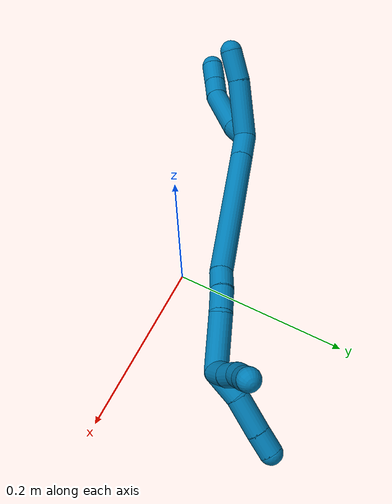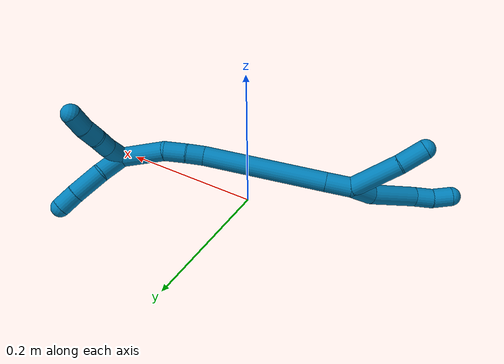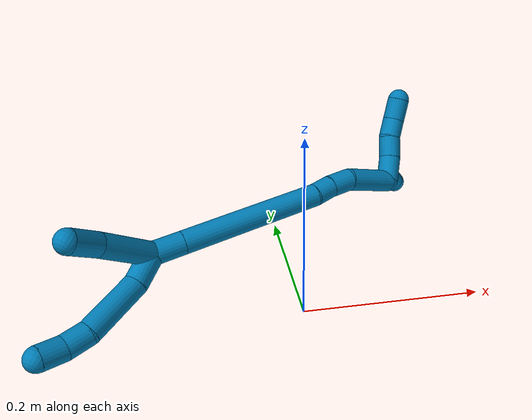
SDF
<sdf version="1.7">
 <world name="default">
  <model name="9">
   <static>0</static>
   <link name="9">
    <collision name="collision-cylinder-e_1_2_8">
     <pose>5e-06 0.000266 -0.017074 -3.12604 0.000302 -0.038848</pose>
     <geometry><cylinder><radius>0.0125</radius><length>0.034152</length></cylinder></geometry>
     <surface>
      <friction><ode><mu>1.16</mu><mu2>1.16</mu2><slip1>0</slip1><slip2>0</slip2></ode></friction>
      <contact><ode><kp>1e+06</kp><kd>1</kd><max_vel>0</max_vel><min_depth>0.001</min_depth></ode></contact>
     </surface>
    </collision>
    <visual name="visual-cylinder-e_1_2_8">
     <pose>5e-06 0.000266 -0.017074 -3.12604 0.000302 -0.038848</pose>
     <geometry><cylinder><radius>0.0125</radius><length>0.034152</length></cylinder></geometry>
     <material><ambient>0 0.490196 0.709804 1</ambient></material>
    </visual>
    <collision name="collision-cylinder-e_2_8_9">
     <pose>-0.008084 -0.005347 -0.065274 2.95494 -0.250162 -1.8618</pose>
     <geometry><cylinder><radius>0.0125</radius><length>0.065389</length></cylinder></geometry>
     <surface>
      <friction><ode><mu>1.16</mu><mu2>1.16</mu2><slip1>0</slip1><slip2>0</slip2></ode></friction>
      <contact><ode><kp>1e+06</kp><kd>1</kd><max_vel>0</max_vel><min_depth>0.001</min_depth></ode></contact>
     </surface>
    </collision>
    <visual name="visual-cylinder-e_2_8_9">
     <pose>-0.008084 -0.005347 -0.065274 2.95494 -0.250162 -1.8618</pose>
     <geometry><cylinder><radius>0.0125</radius><length>0.065389</length></cylinder></geometry>
     <material><ambient>0 0.490196 0.709804 1</ambient></material>
    </visual>
    <collision name="collision-cylinder-e_3_9_10">
     <pose>-0.022383 -0.012585 -0.107308 3.01753 -0.513923 -2.67739</pose>
     <geometry><cylinder><radius>0.0125</radius><length>0.025245</length></cylinder></geometry>
     <surface>
      <friction><ode><mu>1.16</mu><mu2>1.16</mu2><slip1>0</slip1><slip2>0</slip2></ode></friction>
      <contact><ode><kp>1e+06</kp><kd>1</kd><max_vel>0</max_vel><min_depth>0.001</min_depth></ode></contact>
     </surface>
    </collision>
    <visual name="visual-cylinder-e_3_9_10">
     <pose>-0.022383 -0.012585 -0.107308 3.01753 -0.513923 -2.67739</pose>
     <geometry><cylinder><radius>0.0125</radius><length>0.025245</length></cylinder></geometry>
     <material><ambient>0 0.490196 0.709804 1</ambient></material>
    </visual>
    <collision name="collision-cylinder-e_4_10_6">
     <pose>-0.036153 -0.0177 -0.127576 2.76013 -0.643611 -2.09172</pose>
     <geometry><cylinder><radius>0.0125</radius><length>0.025214</length></cylinder></geometry>
     <surface>
      <friction><ode><mu>1.16</mu><mu2>1.16</mu2><slip1>0</slip1><slip2>0</slip2></ode></friction>
      <contact><ode><kp>1e+06</kp><kd>1</kd><max_vel>0</max_vel><min_depth>0.001</min_depth></ode></contact>
     </surface>
    </collision>
    <visual name="visual-cylinder-e_4_10_6">
     <pose>-0.036153 -0.0177 -0.127576 2.76013 -0.643611 -2.09172</pose>
     <geometry><cylinder><radius>0.0125</radius><length>0.025214</length></cylinder></geometry>
     <material><ambient>0 0.490196 0.709804 1</ambient></material>
    </visual>
    <collision name="collision-cylinder-e_1_2_11">
     <pose>-0.023823 -0.017754 -0.012986 2.20233 -0.825252 -1.42349</pose>
     <geometry><cylinder><radius>0.0125</radius><length>0.064851</length></cylinder></geometry>
     <surface>
      <friction><ode><mu>1.16</mu><mu2>1.16</mu2><slip1>0</slip1><slip2>0</slip2></ode></friction>
      <contact><ode><kp>1e+06</kp><kd>1</kd><max_vel>0</max_vel><min_depth>0.001</min_depth></ode></contact>
     </surface>
    </collision>
    <visual name="visual-cylinder-e_1_2_11">
     <pose>-0.023823 -0.017754 -0.012986 2.20233 -0.825252 -1.42349</pose>
     <geometry><cylinder><radius>0.0125</radius><length>0.064851</length></cylinder></geometry>
     <material><ambient>0 0.490196 0.709804 1</ambient></material>
    </visual>
    <collision name="collision-cylinder-e_2_11_5">
     <pose>-0.058705 -0.046756 -0.033722 2.17407 -0.680558 -1.18595</pose>
     <geometry><cylinder><radius>0.0125</radius><length>0.035149</length></cylinder></geometry>
     <surface>
      <friction><ode><mu>1.16</mu><mu2>1.16</mu2><slip1>0</slip1><slip2>0</slip2></ode></friction>
      <contact><ode><kp>1e+06</kp><kd>1</kd><max_vel>0</max_vel><min_depth>0.001</min_depth></ode></contact>
     </surface>
    </collision>
    <visual name="visual-cylinder-e_2_11_5">
     <pose>-0.058705 -0.046756 -0.033722 2.17407 -0.680558 -1.18595</pose>
     <geometry><cylinder><radius>0.0125</radius><length>0.035149</length></cylinder></geometry>
     <material><ambient>0 0.490196 0.709804 1</ambient></material>
    </visual>
    <collision name="collision-cylinder-e_1_2_12">
     <pose>0.01085 -0.000377 0.01233 0.03054 0.721409 0.011521</pose>
     <geometry><cylinder><radius>0.0125</radius><length>0.032857</length></cylinder></geometry>
     <surface>
      <friction><ode><mu>1.16</mu><mu2>1.16</mu2><slip1>0</slip1><slip2>0</slip2></ode></friction>
      <contact><ode><kp>1e+06</kp><kd>1</kd><max_vel>0</max_vel><min_depth>0.001</min_depth></ode></contact>
     </surface>
    </collision>
    <visual name="visual-cylinder-e_1_2_12">
     <pose>0.01085 -0.000377 0.01233 0.03054 0.721409 0.011521</pose>
     <geometry><cylinder><radius>0.0125</radius><length>0.032857</length></cylinder></geometry>
     <material><ambient>0 0.490196 0.709804 1</ambient></material>
    </visual>
    <collision name="collision-cylinder-e_2_12_13">
     <pose>0.073379 -0.003028 0.08349 0.038647 0.720407 0.014557</pose>
     <geometry><cylinder><radius>0.0125</radius><length>0.156677</length></cylinder></geometry>
     <surface>
      <friction><ode><mu>1.16</mu><mu2>1.16</mu2><slip1>0</slip1><slip2>0</slip2></ode></friction>
      <contact><ode><kp>1e+06</kp><kd>1</kd><max_vel>0</max_vel><min_depth>0.001</min_depth></ode></contact>
     </surface>
    </collision>
    <visual name="visual-cylinder-e_2_12_13">
     <pose>0.073379 -0.003028 0.08349 0.038647 0.720407 0.014557</pose>
     <geometry><cylinder><radius>0.0125</radius><length>0.156677</length></cylinder></geometry>
     <material><ambient>0 0.490196 0.709804 1</ambient></material>
    </visual>
    <collision name="collision-cylinder-e_3_13_14">
     <pose>0.131081 -0.004485 0.151863 -0.085526 0.561342 -0.024669</pose>
     <geometry><cylinder><radius>0.0125</radius><length>0.022628</length></cylinder></geometry>
     <surface>
      <friction><ode><mu>1.16</mu><mu2>1.16</mu2><slip1>0</slip1><slip2>0</slip2></ode></friction>
      <contact><ode><kp>1e+06</kp><kd>1</kd><max_vel>0</max_vel><min_depth>0.001</min_depth></ode></contact>
     </surface>
    </collision>
    <visual name="visual-cylinder-e_3_13_14">
     <pose>0.131081 -0.004485 0.151863 -0.085526 0.561342 -0.024669</pose>
     <geometry><cylinder><radius>0.0125</radius><length>0.022628</length></cylinder></geometry>
     <material><ambient>0 0.490196 0.709804 1</ambient></material>
    </visual>
    <collision name="collision-cylinder-e_4_14_15">
     <pose>0.14586 -0.002575 0.172064 -0.102025 0.685179 -0.036415</pose>
     <geometry><cylinder><radius>0.0125</radius><length>0.027673</length></cylinder></geometry>
     <surface>
      <friction><ode><mu>1.16</mu><mu2>1.16</mu2><slip1>0</slip1><slip2>0</slip2></ode></friction>
      <contact><ode><kp>1e+06</kp><kd>1</kd><max_vel>0</max_vel><min_depth>0.001</min_depth></ode></contact>
     </surface>
    </collision>
    <visual name="visual-cylinder-e_4_14_15">
     <pose>0.14586 -0.002575 0.172064 -0.102025 0.685179 -0.036415</pose>
     <geometry><cylinder><radius>0.0125</radius><length>0.027673</length></cylinder></geometry>
     <material><ambient>0 0.490196 0.709804 1</ambient></material>
    </visual>
    <collision name="collision-cylinder-e_5_15_1">
     <pose>0.178442 0.006527 0.199247 -0.451412 0.914151 -0.224905</pose>
     <geometry><cylinder><radius>0.0125</radius><length>0.060165</length></cylinder></geometry>
     <surface>
      <friction><ode><mu>1.16</mu><mu2>1.16</mu2><slip1>0</slip1><slip2>0</slip2></ode></friction>
      <contact><ode><kp>1e+06</kp><kd>1</kd><max_vel>0</max_vel><min_depth>0.001</min_depth></ode></contact>
     </surface>
    </collision>
    <visual name="visual-cylinder-e_5_15_1">
     <pose>0.178442 0.006527 0.199247 -0.451412 0.914151 -0.224905</pose>
     <geometry><cylinder><radius>0.0125</radius><length>0.060165</length></cylinder></geometry>
     <material><ambient>0 0.490196 0.709804 1</ambient></material>
    </visual>
    <collision name="collision-cylinder-e_1_1_16">
     <pose>0.205657 0.02721 0.225871 -0.897865 0.206107 -0.099561</pose>
     <geometry><cylinder><radius>0.0125</radius><length>0.033109</length></cylinder></geometry>
     <surface>
      <friction><ode><mu>1.16</mu><mu2>1.16</mu2><slip1>0</slip1><slip2>0</slip2></ode></friction>
      <contact><ode><kp>1e+06</kp><kd>1</kd><max_vel>0</max_vel><min_depth>0.001</min_depth></ode></contact>
     </surface>
    </collision>
    <visual name="visual-cylinder-e_1_1_16">
     <pose>0.205657 0.02721 0.225871 -0.897865 0.206107 -0.099561</pose>
     <geometry><cylinder><radius>0.0125</radius><length>0.033109</length></cylinder></geometry>
     <material><ambient>0 0.490196 0.709804 1</ambient></material>
    </visual>
    <collision name="collision-cylinder-e_2_16_17">
     <pose>0.217418 0.056203 0.245746 -1.03117 0.414586 -0.237258</pose>
     <geometry><cylinder><radius>0.0125</radius><length>0.041572</length></cylinder></geometry>
     <surface>
      <friction><ode><mu>1.16</mu><mu2>1.16</mu2><slip1>0</slip1><slip2>0</slip2></ode></friction>
      <contact><ode><kp>1e+06</kp><kd>1</kd><max_vel>0</max_vel><min_depth>0.001</min_depth></ode></contact>
     </surface>
    </collision>
    <visual name="visual-cylinder-e_2_16_17">
     <pose>0.217418 0.056203 0.245746 -1.03117 0.414586 -0.237258</pose>
     <geometry><cylinder><radius>0.0125</radius><length>0.041572</length></cylinder></geometry>
     <material><ambient>0 0.490196 0.709804 1</ambient></material>
    </visual>
    <collision name="collision-cylinder-e_3_17_4">
     <pose>0.230665 0.082826 0.261034 -1.07944 0.395239 -0.238757</pose>
     <geometry><cylinder><radius>0.0125</radius><length>0.025319</length></cylinder></geometry>
     <surface>
      <friction><ode><mu>1.16</mu><mu2>1.16</mu2><slip1>0</slip1><slip2>0</slip2></ode></friction>
      <contact><ode><kp>1e+06</kp><kd>1</kd><max_vel>0</max_vel><min_depth>0.001</min_depth></ode></contact>
     </surface>
    </collision>
    <visual name="visual-cylinder-e_3_17_4">
     <pose>0.230665 0.082826 0.261034 -1.07944 0.395239 -0.238757</pose>
     <geometry><cylinder><radius>0.0125</radius><length>0.025319</length></cylinder></geometry>
     <material><ambient>0 0.490196 0.709804 1</ambient></material>
    </visual>
    <collision name="collision-cylinder-e_1_1_18">
     <pose>0.197564 0.011865 0.229154 0.19717 -0.33199 -0.033138</pose>
     <geometry><cylinder><radius>0.0125</radius><length>0.02887</length></cylinder></geometry>
     <surface>
      <friction><ode><mu>1.16</mu><mu2>1.16</mu2><slip1>0</slip1><slip2>0</slip2></ode></friction>
      <contact><ode><kp>1e+06</kp><kd>1</kd><max_vel>0</max_vel><min_depth>0.001</min_depth></ode></contact>
     </surface>
    </collision>
    <visual name="visual-cylinder-e_1_1_18">
     <pose>0.197564 0.011865 0.229154 0.19717 -0.33199 -0.033138</pose>
     <geometry><cylinder><radius>0.0125</radius><length>0.02887</length></cylinder></geometry>
     <material><ambient>0 0.490196 0.709804 1</ambient></material>
    </visual>
    <collision name="collision-cylinder-e_2_18_19">
     <pose>0.187183 0.006437 0.253046 0.25631 -0.48147 -0.063249</pose>
     <geometry><cylinder><radius>0.0125</radius><length>0.024515</length></cylinder></geometry>
     <surface>
      <friction><ode><mu>1.16</mu><mu2>1.16</mu2><slip1>0</slip1><slip2>0</slip2></ode></friction>
      <contact><ode><kp>1e+06</kp><kd>1</kd><max_vel>0</max_vel><min_depth>0.001</min_depth></ode></contact>
     </surface>
    </collision>
    <visual name="visual-cylinder-e_2_18_19">
     <pose>0.187183 0.006437 0.253046 0.25631 -0.48147 -0.063249</pose>
     <geometry><cylinder><radius>0.0125</radius><length>0.024515</length></cylinder></geometry>
     <material><ambient>0 0.490196 0.709804 1</ambient></material>
    </visual>
    <collision name="collision-cylinder-e_3_19_20">
     <pose>0.17893 0.000619 0.273585 0.296467 -0.24091 -0.036146</pose>
     <geometry><cylinder><radius>0.0125</radius><length>0.021599</length></cylinder></geometry>
     <surface>
      <friction><ode><mu>1.16</mu><mu2>1.16</mu2><slip1>0</slip1><slip2>0</slip2></ode></friction>
      <contact><ode><kp>1e+06</kp><kd>1</kd><max_vel>0</max_vel><min_depth>0.001</min_depth></ode></contact>
     </surface>
    </collision>
    <visual name="visual-cylinder-e_3_19_20">
     <pose>0.17893 0.000619 0.273585 0.296467 -0.24091 -0.036146</pose>
     <geometry><cylinder><radius>0.0125</radius><length>0.021599</length></cylinder></geometry>
     <material><ambient>0 0.490196 0.709804 1</ambient></material>
    </visual>
    <collision name="collision-cylinder-e_4_20_3">
     <pose>0.172992 -0.007688 0.294462 0.450297 -0.272095 -0.062685</pose>
     <geometry><cylinder><radius>0.0125</radius><length>0.025016</length></cylinder></geometry>
     <surface>
      <friction><ode><mu>1.16</mu><mu2>1.16</mu2><slip1>0</slip1><slip2>0</slip2></ode></friction>
      <contact><ode><kp>1e+06</kp><kd>1</kd><max_vel>0</max_vel><min_depth>0.001</min_depth></ode></contact>
     </surface>
    </collision>
    <visual name="visual-cylinder-e_4_20_3">
     <pose>0.172992 -0.007688 0.294462 0.450297 -0.272095 -0.062685</pose>
     <geometry><cylinder><radius>0.0125</radius><length>0.025016</length></cylinder></geometry>
     <material><ambient>0 0.490196 0.709804 1</ambient></material>
    </visual>
    <collision name="collision-sphere-3">
     <pose>0.169631 -0.012932 0.305309 0 -0 0</pose>
     <geometry><sphere><radius>0.0125</radius></sphere></geometry>
     <surface>
      <friction><ode><mu>1.16</mu><mu2>1.16</mu2><slip1>0</slip1><slip2>0</slip2></ode></friction>
      <contact><ode><kp>1e+06</kp><kd>1</kd><max_vel>0</max_vel><min_depth>0.001</min_depth></ode></contact>
     </surface>
    </collision>
    <visual name="visual-sphere-3">
     <pose>0.169631 -0.012932 0.305309 0 -0 0</pose>
     <geometry><sphere><radius>0.0125</radius></sphere></geometry>
     <material><ambient>0 0.490196 0.709804 1</ambient></material>
    </visual>
    <collision name="collision-sphere-20">
     <pose>0.176354 -0.002445 0.283615 0 -0 0</pose>
     <geometry><sphere><radius>0.0125</radius></sphere></geometry>
     <surface>
      <friction><ode><mu>1.16</mu><mu2>1.16</mu2><slip1>0</slip1><slip2>0</slip2></ode></friction>
      <contact><ode><kp>1e+06</kp><kd>1</kd><max_vel>0</max_vel><min_depth>0.001</min_depth></ode></contact>
     </surface>
    </collision>
    <visual name="visual-sphere-20">
     <pose>0.176354 -0.002445 0.283615 0 -0 0</pose>
     <geometry><sphere><radius>0.0125</radius></sphere></geometry>
     <material><ambient>0 0.490196 0.709804 1</ambient></material>
    </visual>
    <collision name="collision-sphere-19">
     <pose>0.181507 0.003683 0.263555 0 -0 0</pose>
     <geometry><sphere><radius>0.0125</radius></sphere></geometry>
     <surface>
      <friction><ode><mu>1.16</mu><mu2>1.16</mu2><slip1>0</slip1><slip2>0</slip2></ode></friction>
      <contact><ode><kp>1e+06</kp><kd>1</kd><max_vel>0</max_vel><min_depth>0.001</min_depth></ode></contact>
     </surface>
    </collision>
    <visual name="visual-sphere-19">
     <pose>0.181507 0.003683 0.263555 0 -0 0</pose>
     <geometry><sphere><radius>0.0125</radius></sphere></geometry>
     <material><ambient>0 0.490196 0.709804 1</ambient></material>
    </visual>
    <collision name="collision-sphere-11">
     <pose>-0.047647 -0.035508 -0.025972 0 -0 0</pose>
     <geometry><sphere><radius>0.0125</radius></sphere></geometry>
     <surface>
      <friction><ode><mu>1.16</mu><mu2>1.16</mu2><slip1>0</slip1><slip2>0</slip2></ode></friction>
      <contact><ode><kp>1e+06</kp><kd>1</kd><max_vel>0</max_vel><min_depth>0.001</min_depth></ode></contact>
     </surface>
    </collision>
    <visual name="visual-sphere-11">
     <pose>-0.047647 -0.035508 -0.025972 0 -0 0</pose>
     <geometry><sphere><radius>0.0125</radius></sphere></geometry>
     <material><ambient>0 0.490196 0.709804 1</ambient></material>
    </visual>
    <collision name="collision-sphere-6">
     <pose>-0.043719 -0.021454 -0.136936 0 -0 0</pose>
     <geometry><sphere><radius>0.0125</radius></sphere></geometry>
     <surface>
      <friction><ode><mu>1.16</mu><mu2>1.16</mu2><slip1>0</slip1><slip2>0</slip2></ode></friction>
      <contact><ode><kp>1e+06</kp><kd>1</kd><max_vel>0</max_vel><min_depth>0.001</min_depth></ode></contact>
     </surface>
    </collision>
    <visual name="visual-sphere-6">
     <pose>-0.043719 -0.021454 -0.136936 0 -0 0</pose>
     <geometry><sphere><radius>0.0125</radius></sphere></geometry>
     <material><ambient>0 0.490196 0.709804 1</ambient></material>
    </visual>
    <collision name="collision-sphere-10">
     <pose>-0.028588 -0.013945 -0.118216 0 -0 0</pose>
     <geometry><sphere><radius>0.0125</radius></sphere></geometry>
     <surface>
      <friction><ode><mu>1.16</mu><mu2>1.16</mu2><slip1>0</slip1><slip2>0</slip2></ode></friction>
      <contact><ode><kp>1e+06</kp><kd>1</kd><max_vel>0</max_vel><min_depth>0.001</min_depth></ode></contact>
     </surface>
    </collision>
    <visual name="visual-sphere-10">
     <pose>-0.028588 -0.013945 -0.118216 0 -0 0</pose>
     <geometry><sphere><radius>0.0125</radius></sphere></geometry>
     <material><ambient>0 0.490196 0.709804 1</ambient></material>
    </visual>
    <collision name="collision-sphere-9">
     <pose>-0.016178 -0.011225 -0.096401 0 -0 0</pose>
     <geometry><sphere><radius>0.0125</radius></sphere></geometry>
     <surface>
      <friction><ode><mu>1.16</mu><mu2>1.16</mu2><slip1>0</slip1><slip2>0</slip2></ode></friction>
      <contact><ode><kp>1e+06</kp><kd>1</kd><max_vel>0</max_vel><min_depth>0.001</min_depth></ode></contact>
     </surface>
    </collision>
    <visual name="visual-sphere-9">
     <pose>-0.016178 -0.011225 -0.096401 0 -0 0</pose>
     <geometry><sphere><radius>0.0125</radius></sphere></geometry>
     <material><ambient>0 0.490196 0.709804 1</ambient></material>
    </visual>
    <collision name="collision-sphere-2">
     <geometry><sphere><radius>0.0125</radius></sphere></geometry>
     <surface>
      <friction><ode><mu>1.16</mu><mu2>1.16</mu2><slip1>0</slip1><slip2>0</slip2></ode></friction>
      <contact><ode><kp>1e+06</kp><kd>1</kd><max_vel>0</max_vel><min_depth>0.001</min_depth></ode></contact>
     </surface>
    </collision>
    <visual name="visual-sphere-2">
     <geometry><sphere><radius>0.0125</radius></sphere></geometry>
     <material><ambient>0 0.490196 0.709804 1</ambient></material>
    </visual>
    <collision name="collision-sphere-8">
     <pose>1e-05 0.000531 -0.034147 0 -0 0</pose>
     <geometry><sphere><radius>0.0125</radius></sphere></geometry>
     <surface>
      <friction><ode><mu>1.16</mu><mu2>1.16</mu2><slip1>0</slip1><slip2>0</slip2></ode></friction>
      <contact><ode><kp>1e+06</kp><kd>1</kd><max_vel>0</max_vel><min_depth>0.001</min_depth></ode></contact>
     </surface>
    </collision>
    <visual name="visual-sphere-8">
     <pose>1e-05 0.000531 -0.034147 0 -0 0</pose>
     <geometry><sphere><radius>0.0125</radius></sphere></geometry>
     <material><ambient>0 0.490196 0.709804 1</ambient></material>
    </visual>
    <collision name="collision-sphere-5">
     <pose>-0.069764 -0.058004 -0.041472 0 -0 0</pose>
     <geometry><sphere><radius>0.0125</radius></sphere></geometry>
     <surface>
      <friction><ode><mu>1.16</mu><mu2>1.16</mu2><slip1>0</slip1><slip2>0</slip2></ode></friction>
      <contact><ode><kp>1e+06</kp><kd>1</kd><max_vel>0</max_vel><min_depth>0.001</min_depth></ode></contact>
     </surface>
    </collision>
    <visual name="visual-sphere-5">
     <pose>-0.069764 -0.058004 -0.041472 0 -0 0</pose>
     <geometry><sphere><radius>0.0125</radius></sphere></geometry>
     <material><ambient>0 0.490196 0.709804 1</ambient></material>
    </visual>
    <collision name="collision-sphere-12">
     <pose>0.0217 -0.000753 0.02466 0 -0 0</pose>
     <geometry><sphere><radius>0.0125</radius></sphere></geometry>
     <surface>
      <friction><ode><mu>1.16</mu><mu2>1.16</mu2><slip1>0</slip1><slip2>0</slip2></ode></friction>
      <contact><ode><kp>1e+06</kp><kd>1</kd><max_vel>0</max_vel><min_depth>0.001</min_depth></ode></contact>
     </surface>
    </collision>
    <visual name="visual-sphere-12">
     <pose>0.0217 -0.000753 0.02466 0 -0 0</pose>
     <geometry><sphere><radius>0.0125</radius></sphere></geometry>
     <material><ambient>0 0.490196 0.709804 1</ambient></material>
    </visual>
    <collision name="collision-sphere-13">
     <pose>0.125058 -0.005303 0.142321 0 -0 0</pose>
     <geometry><sphere><radius>0.0125</radius></sphere></geometry>
     <surface>
      <friction><ode><mu>1.16</mu><mu2>1.16</mu2><slip1>0</slip1><slip2>0</slip2></ode></friction>
      <contact><ode><kp>1e+06</kp><kd>1</kd><max_vel>0</max_vel><min_depth>0.001</min_depth></ode></contact>
     </surface>
    </collision>
    <visual name="visual-sphere-13">
     <pose>0.125058 -0.005303 0.142321 0 -0 0</pose>
     <geometry><sphere><radius>0.0125</radius></sphere></geometry>
     <material><ambient>0 0.490196 0.709804 1</ambient></material>
    </visual>
    <collision name="collision-sphere-14">
     <pose>0.137104 -0.003667 0.161406 0 -0 0</pose>
     <geometry><sphere><radius>0.0125</radius></sphere></geometry>
     <surface>
      <friction><ode><mu>1.16</mu><mu2>1.16</mu2><slip1>0</slip1><slip2>0</slip2></ode></friction>
      <contact><ode><kp>1e+06</kp><kd>1</kd><max_vel>0</max_vel><min_depth>0.001</min_depth></ode></contact>
     </surface>
    </collision>
    <visual name="visual-sphere-14">
     <pose>0.137104 -0.003667 0.161406 0 -0 0</pose>
     <geometry><sphere><radius>0.0125</radius></sphere></geometry>
     <material><ambient>0 0.490196 0.709804 1</ambient></material>
    </visual>
    <collision name="collision-sphere-15">
     <pose>0.154616 -0.001484 0.182722 0 -0 0</pose>
     <geometry><sphere><radius>0.0125</radius></sphere></geometry>
     <surface>
      <friction><ode><mu>1.16</mu><mu2>1.16</mu2><slip1>0</slip1><slip2>0</slip2></ode></friction>
      <contact><ode><kp>1e+06</kp><kd>1</kd><max_vel>0</max_vel><min_depth>0.001</min_depth></ode></contact>
     </surface>
    </collision>
    <visual name="visual-sphere-15">
     <pose>0.154616 -0.001484 0.182722 0 -0 0</pose>
     <geometry><sphere><radius>0.0125</radius></sphere></geometry>
     <material><ambient>0 0.490196 0.709804 1</ambient></material>
    </visual>
    <collision name="collision-sphere-1">
     <pose>0.202269 0.014538 0.215772 0 -0 0</pose>
     <geometry><sphere><radius>0.0125</radius></sphere></geometry>
     <surface>
      <friction><ode><mu>1.16</mu><mu2>1.16</mu2><slip1>0</slip1><slip2>0</slip2></ode></friction>
      <contact><ode><kp>1e+06</kp><kd>1</kd><max_vel>0</max_vel><min_depth>0.001</min_depth></ode></contact>
     </surface>
    </collision>
    <visual name="visual-sphere-1">
     <pose>0.202269 0.014538 0.215772 0 -0 0</pose>
     <geometry><sphere><radius>0.0125</radius></sphere></geometry>
     <material><ambient>0 0.490196 0.709804 1</ambient></material>
    </visual>
    <collision name="collision-sphere-18">
     <pose>0.192859 0.009191 0.242537 0 -0 0</pose>
     <geometry><sphere><radius>0.0125</radius></sphere></geometry>
     <surface>
      <friction><ode><mu>1.16</mu><mu2>1.16</mu2><slip1>0</slip1><slip2>0</slip2></ode></friction>
      <contact><ode><kp>1e+06</kp><kd>1</kd><max_vel>0</max_vel><min_depth>0.001</min_depth></ode></contact>
     </surface>
    </collision>
    <visual name="visual-sphere-18">
     <pose>0.192859 0.009191 0.242537 0 -0 0</pose>
     <geometry><sphere><radius>0.0125</radius></sphere></geometry>
     <material><ambient>0 0.490196 0.709804 1</ambient></material>
    </visual>
    <collision name="collision-sphere-16">
     <pose>0.209045 0.039881 0.235971 0 -0 0</pose>
     <geometry><sphere><radius>0.0125</radius></sphere></geometry>
     <surface>
      <friction><ode><mu>1.16</mu><mu2>1.16</mu2><slip1>0</slip1><slip2>0</slip2></ode></friction>
      <contact><ode><kp>1e+06</kp><kd>1</kd><max_vel>0</max_vel><min_depth>0.001</min_depth></ode></contact>
     </surface>
    </collision>
    <visual name="visual-sphere-16">
     <pose>0.209045 0.039881 0.235971 0 -0 0</pose>
     <geometry><sphere><radius>0.0125</radius></sphere></geometry>
     <material><ambient>0 0.490196 0.709804 1</ambient></material>
    </visual>
    <collision name="collision-sphere-17">
     <pose>0.22579 0.072524 0.255522 0 -0 0</pose>
     <geometry><sphere><radius>0.0125</radius></sphere></geometry>
     <surface>
      <friction><ode><mu>1.16</mu><mu2>1.16</mu2><slip1>0</slip1><slip2>0</slip2></ode></friction>
      <contact><ode><kp>1e+06</kp><kd>1</kd><max_vel>0</max_vel><min_depth>0.001</min_depth></ode></contact>
     </surface>
    </collision>
    <visual name="visual-sphere-17">
     <pose>0.22579 0.072524 0.255522 0 -0 0</pose>
     <geometry><sphere><radius>0.0125</radius></sphere></geometry>
     <material><ambient>0 0.490196 0.709804 1</ambient></material>
    </visual>
    <collision name="collision-sphere-4">
     <pose>0.235539 0.093127 0.266547 0 -0 0</pose>
     <geometry><sphere><radius>0.0125</radius></sphere></geometry>
     <surface>
      <friction><ode><mu>1.16</mu><mu2>1.16</mu2><slip1>0</slip1><slip2>0</slip2></ode></friction>
      <contact><ode><kp>1e+06</kp><kd>1</kd><max_vel>0</max_vel><min_depth>0.001</min_depth></ode></contact>
     </surface>
    </collision>
    <visual name="visual-sphere-4">
     <pose>0.235539 0.093127 0.266547 0 -0 0</pose>
     <geometry><sphere><radius>0.0125</radius></sphere></geometry>
     <material><ambient>0 0.490196 0.709804 1</ambient></material>
    </visual>
    <inertial>
     <pose>0.085535 0.001986 0.095021 0 -0 0</pose>
     <mass>0.75</mass>
     <inertia>
      <ixx>0.000243</ixx>
      <ixy>0</ixy>
      <ixz>0</ixz>
      <iyy>0.000343</iyy>
      <iyz>0</iyz>
      <izz>-0.000177</izz>
     </inertia>
    </inertial>
   </link>
   <pose>-0.153899 0.003357 0.088196 -0.883314 0.517015 -0.274356</pose>
  </model>
 </world>
</sdf>
